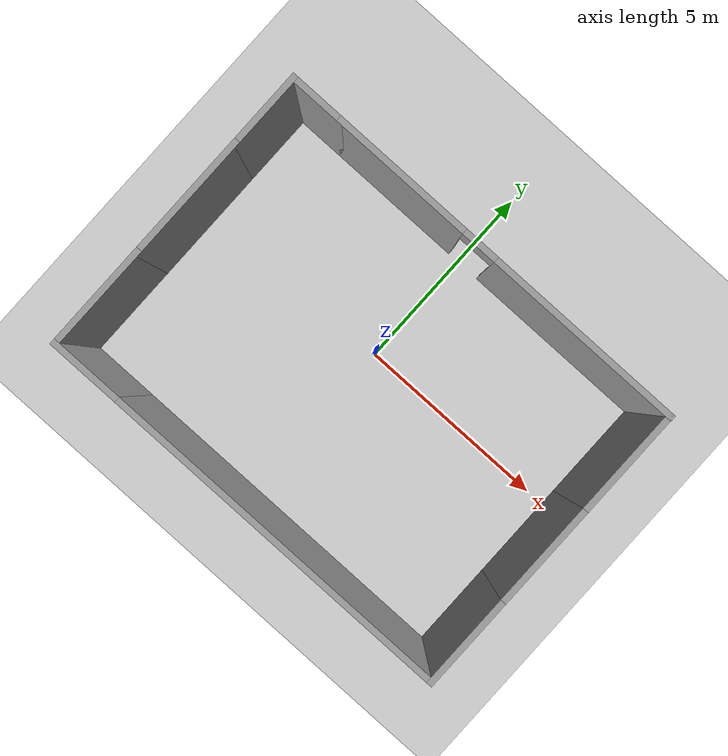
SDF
<sdf version="1.7">
 <world name="default">
  <plugin filename="gz-sim-physics-system" name="gz::sim::systems::Physics"/>
  <plugin filename="gz-sim-scene-broadcaster-system" name="gz::sim::systems::SceneBroadcaster"/>
  <plugin filename="gz-sim-sensors-system" name="gz::sim::systems::Sensors">
   <render_engine>ogre2</render_engine>
  </plugin>
  <light name="sun" type="directional">
   <pose>0 0 10 0 -0 0</pose>
   <diffuse>0.8 0.8 0.8 1</diffuse>
   <specular>0.2 0.2 0.2 1</specular>
   <attenuation>
    <range>1000</range>
    <constant>0.9</constant>
    <linear>0.01</linear>
    <quadratic>0.001</quadratic>
   </attenuation>
   <direction>-0.5 0.1 -0.9</direction>
   <spot><inner_angle>0</inner_angle><outer_angle>0</outer_angle><falloff>0</falloff></spot>
  </light>
  <model name="ground_plane">
   <static>1</static>
   <link name="link">
    <collision name="collision">
     <geometry><plane><normal>0 0 1</normal><size>100 100</size></plane></geometry>
     <surface><friction><ode><mu>100</mu><mu2>50</mu2></ode></friction></surface>
    </collision>
    <visual name="visual">
     <cast_shadows>0</cast_shadows>
     <geometry><plane><normal>0 0 1</normal><size>100 100</size></plane></geometry>
     <material>
      <script><uri>file://media/materials/scripts/gazebo.material</uri><name>Gazebo/Grey</name></script>
     </material>
    </visual>
   </link>
  </model>
  <gravity>0 0 -9.8</gravity>
  <magnetic_field>6e-06 2.3e-05 -4.2e-05</magnetic_field>
  <atmosphere type="adiabatic"/>
  <physics type="ode">
   <max_step_size>0.001</max_step_size>
   <real_time_factor>1</real_time_factor>
   <real_time_update_rate>1000</real_time_update_rate>
  </physics>
  <scene><ambient>0.4 0.4 0.4 1</ambient><background>0.7 0.7 0.7 1</background><shadows>1</shadows></scene>
  <audio><device>default</device></audio>
  <spherical_coordinates>
   <surface_model>EARTH_WGS84</surface_model>
   <latitude_deg>0</latitude_deg>
   <longitude_deg>0</longitude_deg>
   <elevation>0</elevation>
   <heading_deg>0</heading_deg>
  </spherical_coordinates>
  <model name="test">
   <pose>0.205 -0.665 0 0 -0 0</pose>
   <link name="Wall_18">
    <pose>0.68 3.775 0 0 -0 0</pose>
    <visual name="Wall_18_Visual_0">
     <pose>-2.9625 0 1.25 0 -0 0</pose>
     <geometry><box><size>3.575 0.15 2.5</size></box></geometry>
     <material>
      <script><uri>file://media/materials/scripts/gazebo.material</uri><name>Gazebo/Grey</name></script>
      <ambient>1 1 1 1</ambient>
     </material>
     <meta><layer>0</layer></meta>
    </visual>
    <collision name="Wall_18_Collision_0">
     <geometry><box><size>3.575 0.15 2.5</size></box></geometry>
     <pose>-2.9625 0 1.25 0 -0 0</pose>
    </collision>
    <visual name="Wall_18_Visual_1">
     <pose>2.2375 0 1.25 0 -0 0</pose>
     <geometry><box><size>5.025 0.15 2.5</size></box></geometry>
     <material>
      <script><uri>file://media/materials/scripts/gazebo.material</uri><name>Gazebo/Grey</name></script>
      <ambient>1 1 1 1</ambient>
     </material>
     <meta><layer>0</layer></meta>
    </visual>
    <collision name="Wall_18_Collision_1">
     <geometry><box><size>5.025 0.15 2.5</size></box></geometry>
     <pose>2.2375 0 1.25 0 -0 0</pose>
    </collision>
    <visual name="Wall_18_Visual_2">
     <pose>-0.725 0 2.25 0 -0 0</pose>
     <geometry><box><size>0.9 0.15 0.5</size></box></geometry>
     <material>
      <script><uri>file://media/materials/scripts/gazebo.material</uri><name>Gazebo/Grey</name></script>
      <ambient>1 1 1 1</ambient>
     </material>
     <meta><layer>0</layer></meta>
    </visual>
    <collision name="Wall_18_Collision_2">
     <geometry><box><size>0.9 0.15 0.5</size></box></geometry>
     <pose>-0.725 0 2.25 0 -0 0</pose>
    </collision>
   </link>
   <link name="Wall_19">
    <collision name="Wall_19_Collision">
     <geometry><box><size>0.15 0.15 2.5</size></box></geometry>
     <pose>0 0 1.25 0 -0 0</pose>
    </collision>
    <visual name="Wall_19_Visual">
     <pose>0 0 1.25 0 -0 0</pose>
     <geometry><box><size>0.15 0.15 2.5</size></box></geometry>
     <material>
      <script><uri>file://media/materials/scripts/gazebo.material</uri><name>Gazebo/Grey</name></script>
      <ambient>1 1 1 1</ambient>
     </material>
     <meta><layer>0</layer></meta>
    </visual>
    <pose>5.345 3.775 0 0 -0 0</pose>
   </link>
   <link name="Wall_21">
    <collision name="Wall_21_Collision">
     <geometry><box><size>2.75 0.15 2.5</size></box></geometry>
     <pose>0 0 1.25 0 -0 0</pose>
    </collision>
    <visual name="Wall_21_Visual">
     <pose>0 0 1.25 0 -0 0</pose>
     <geometry><box><size>2.75 0.15 2.5</size></box></geometry>
     <material>
      <script><uri>file://media/materials/scripts/gazebo.material</uri><name>Gazebo/Grey</name></script>
      <ambient>1 1 1 1</ambient>
     </material>
     <meta><layer>0</layer></meta>
    </visual>
    <pose>5.345 2.475 0 0 -0 -1.5708</pose>
   </link>
   <link name="Wall_25">
    <collision name="Wall_25_Collision">
     <geometry><box><size>2.75 0.15 2.5</size></box></geometry>
     <pose>0 0 1.25 0 -0 0</pose>
    </collision>
    <visual name="Wall_25_Visual">
     <pose>0 0 1.25 0 -0 0</pose>
     <geometry><box><size>2.75 0.15 2.5</size></box></geometry>
     <material>
      <script><uri>file://media/materials/scripts/gazebo.material</uri><name>Gazebo/Grey</name></script>
      <ambient>1 1 1 1</ambient>
     </material>
     <meta><layer>0</layer></meta>
    </visual>
    <pose>5.345 -0.125 0 0 -0 -1.5708</pose>
   </link>
   <link name="Wall_29">
    <collision name="Wall_29_Collision">
     <geometry><box><size>2.5 0.15 2.5</size></box></geometry>
     <pose>0 0 1.25 0 -0 0</pose>
    </collision>
    <visual name="Wall_29_Visual">
     <pose>0 0 1.25 0 -0 0</pose>
     <geometry><box><size>2.5 0.15 2.5</size></box></geometry>
     <material>
      <script><uri>file://media/materials/scripts/gazebo.material</uri><name>Gazebo/Grey</name></script>
      <ambient>1 1 1 1</ambient>
     </material>
     <meta><layer>0</layer></meta>
    </visual>
    <pose>5.345 -2.6 0 0 -0 -1.5708</pose>
   </link>
   <link name="Wall_30">
    <collision name="Wall_30_Collision">
     <geometry><box><size>9 0.15 2.5</size></box></geometry>
     <pose>0 0 1.25 0 -0 0</pose>
    </collision>
    <visual name="Wall_30_Visual">
     <pose>0 0 1.25 0 -0 0</pose>
     <geometry><box><size>9 0.15 2.5</size></box></geometry>
     <material>
      <script><uri>file://media/materials/scripts/gazebo.material</uri><name>Gazebo/Grey</name></script>
      <ambient>1 1 1 1</ambient>
     </material>
     <meta><layer>0</layer></meta>
    </visual>
    <pose>0.92 -3.775 0 0 -0 3.14159</pose>
   </link>
   <link name="Wall_32">
    <collision name="Wall_32_Collision">
     <geometry><box><size>2 0.15 2.5</size></box></geometry>
     <pose>0 0 1.25 0 -0 0</pose>
    </collision>
    <visual name="Wall_32_Visual">
     <pose>0 0 1.25 0 -0 0</pose>
     <geometry><box><size>2 0.15 2.5</size></box></geometry>
     <material>
      <script><uri>file://media/materials/scripts/gazebo.material</uri><name>Gazebo/Grey</name></script>
      <ambient>1 1 1 1</ambient>
     </material>
     <meta><layer>0</layer></meta>
    </visual>
    <pose>-4.43 -3.775 0 0 -0 3.14159</pose>
   </link>
   <link name="Wall_33">
    <collision name="Wall_33_Collision">
     <geometry><box><size>2.75 0.15 2.5</size></box></geometry>
     <pose>0 0 1.25 0 -0 0</pose>
    </collision>
    <visual name="Wall_33_Visual">
     <pose>0 0 1.25 0 -0 0</pose>
     <geometry><box><size>2.75 0.15 2.5</size></box></geometry>
     <material>
      <script><uri>file://media/materials/scripts/gazebo.material</uri><name>Gazebo/Grey</name></script>
      <ambient>1 1 1 1</ambient>
     </material>
     <meta><layer>0</layer></meta>
    </visual>
    <pose>-5.355 -2.475 0 0 -0 1.5708</pose>
   </link>
   <link name="Wall_35">
    <collision name="Wall_35_Collision">
     <geometry><box><size>3.25 0.15 2.5</size></box></geometry>
     <pose>0 0 1.25 0 -0 0</pose>
    </collision>
    <visual name="Wall_35_Visual">
     <pose>0 0 1.25 0 -0 0</pose>
     <geometry><box><size>3.25 0.15 2.5</size></box></geometry>
     <material>
      <script><uri>file://media/materials/scripts/gazebo.material</uri><name>Gazebo/Grey</name></script>
      <ambient>1 1 1 1</ambient>
     </material>
     <meta><layer>0</layer></meta>
    </visual>
    <pose>-5.355 0.375 0 0 -0 1.5708</pose>
   </link>
   <link name="Wall_37">
    <collision name="Wall_37_Collision">
     <geometry><box><size>2 0.15 2.5</size></box></geometry>
     <pose>0 0 1.25 0 -0 0</pose>
    </collision>
    <visual name="Wall_37_Visual">
     <pose>0 0 1.25 0 -0 0</pose>
     <geometry><box><size>2 0.15 2.5</size></box></geometry>
     <material>
      <script><uri>file://media/materials/scripts/gazebo.material</uri><name>Gazebo/Grey</name></script>
      <ambient>1 1 1 1</ambient>
     </material>
     <meta><layer>0</layer></meta>
    </visual>
    <pose>-5.355 2.85 0 0 -0 1.5708</pose>
   </link>
   <link name="Wall_38">
    <collision name="Wall_38_Collision">
     <geometry><box><size>1.51 0.15 2.5</size></box></geometry>
     <pose>0 0 1.25 0 -0 0</pose>
    </collision>
    <visual name="Wall_38_Visual">
     <pose>0 0 1.25 0 -0 0</pose>
     <geometry><box><size>1.51 0.15 2.5</size></box></geometry>
     <material>
      <script><uri>file://media/materials/scripts/gazebo.material</uri><name>Gazebo/Grey</name></script>
      <ambient>1 1 1 1</ambient>
     </material>
     <meta><layer>0</layer></meta>
    </visual>
    <pose>-4.675 3.775 0 0 -0 0</pose>
   </link>
   <static>1</static>
  </model>
 </world>
</sdf>
